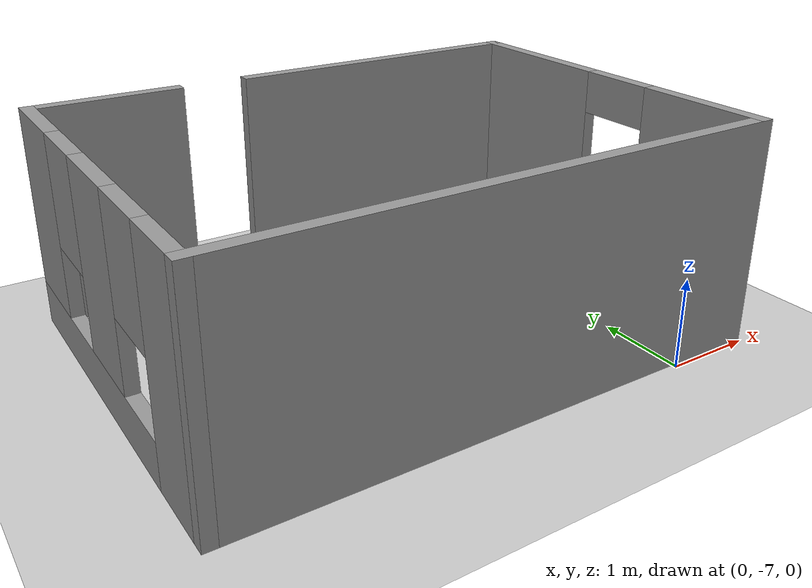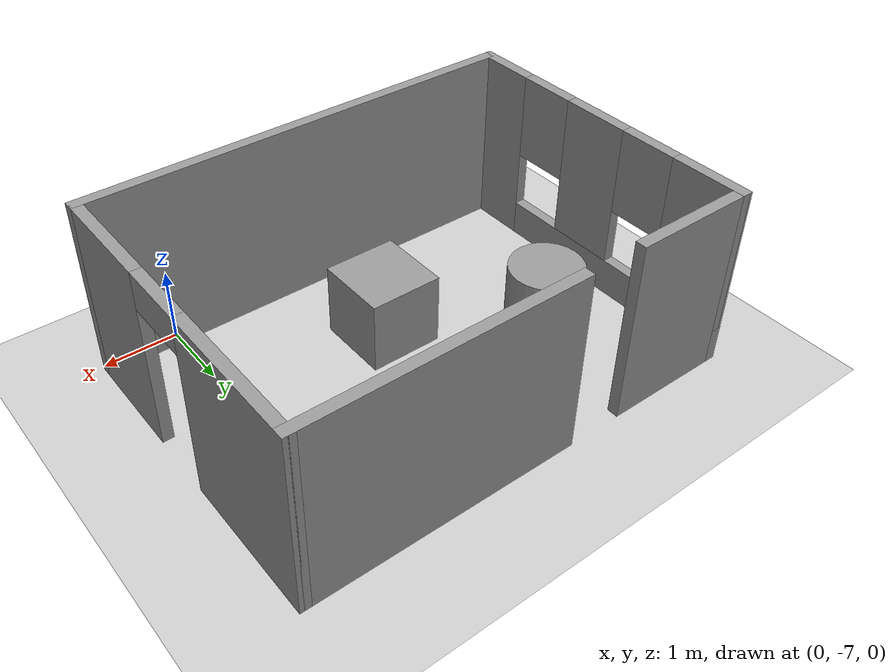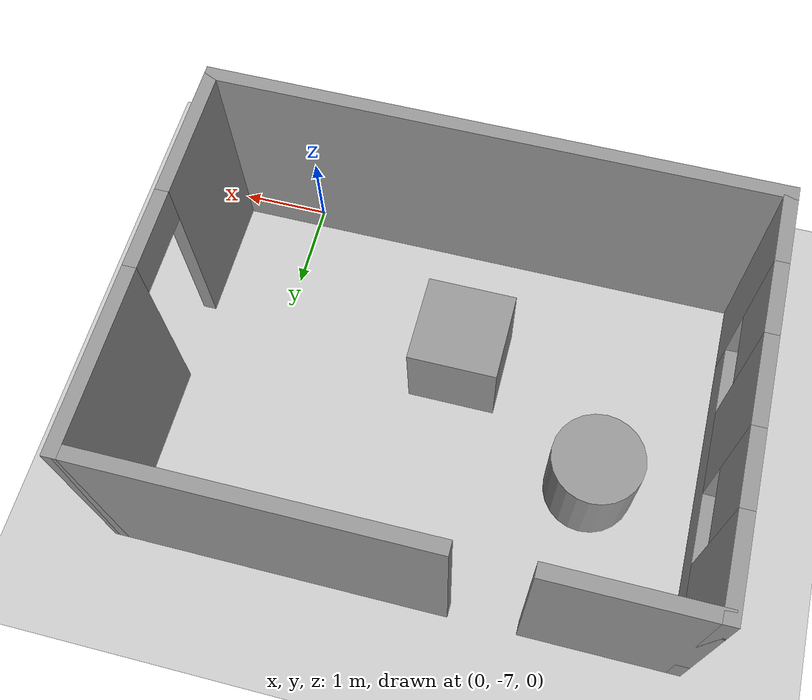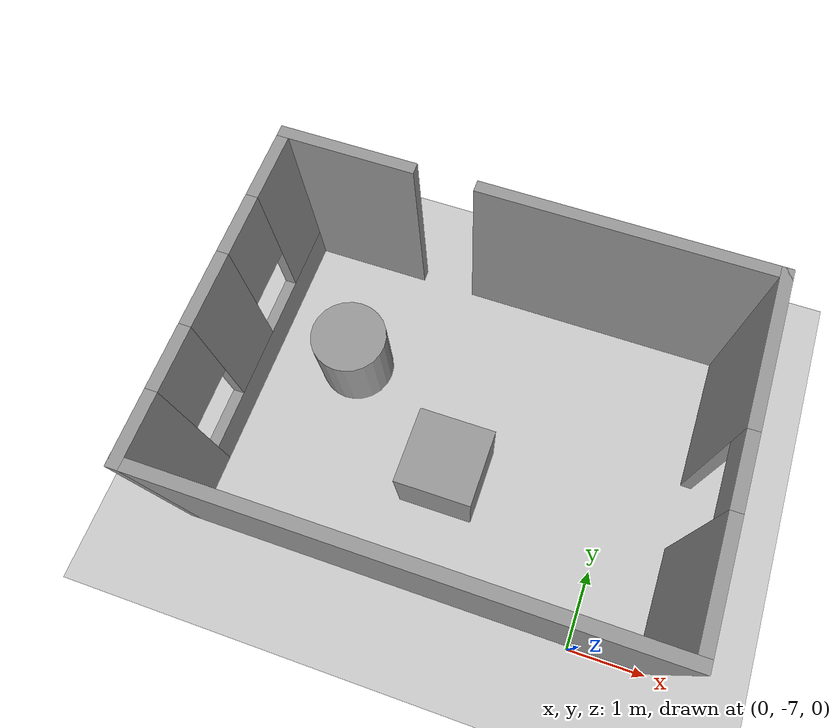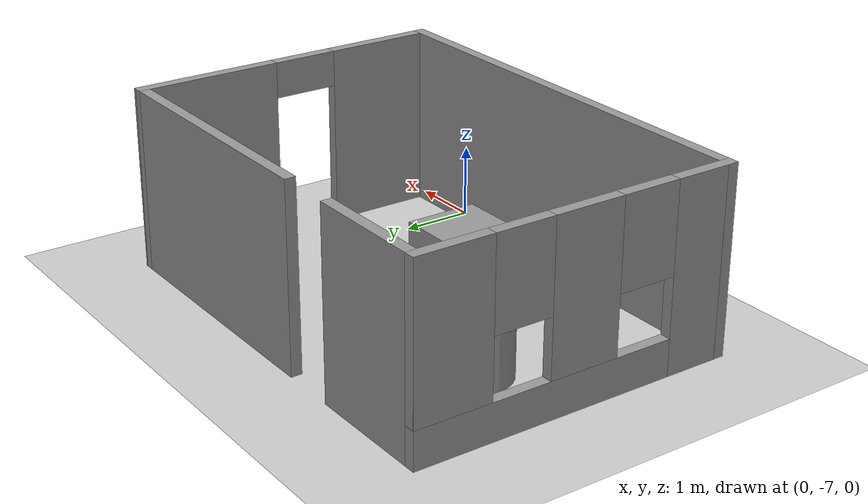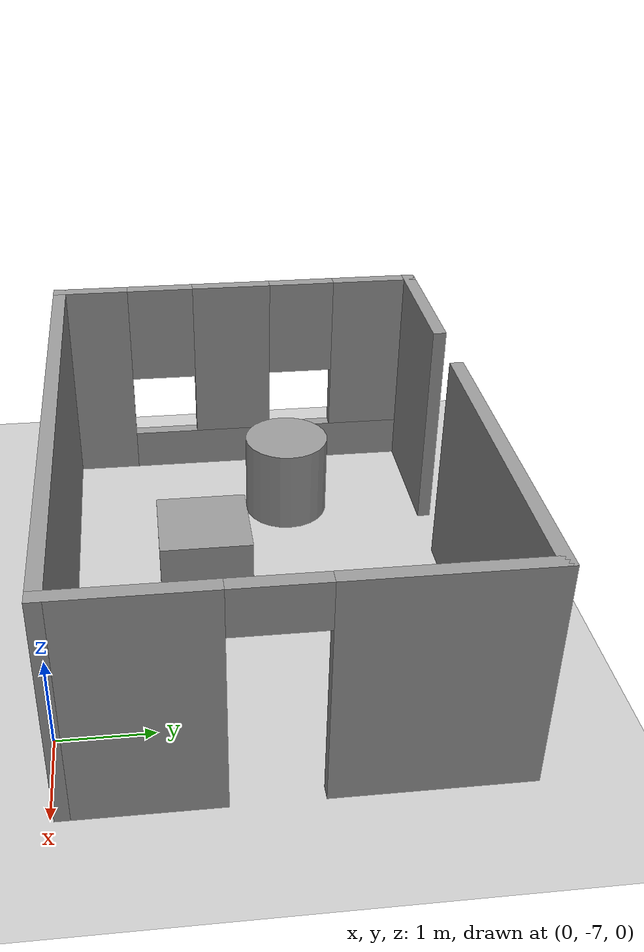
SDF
<sdf version="1.7">
 <world name="default">
  <light name="sun" type="directional">
   <pose>0 0 10 0 -0 0</pose>
   <diffuse>0.8 0.8 0.8 1</diffuse>
   <specular>0.2 0.2 0.2 1</specular>
   <attenuation>
    <range>1000</range>
    <constant>0.9</constant>
    <linear>0.01</linear>
    <quadratic>0.001</quadratic>
   </attenuation>
   <direction>-0.5 0.1 -0.9</direction>
   <spot><inner_angle>0</inner_angle><outer_angle>0</outer_angle><falloff>0</falloff></spot>
  </light>
  <model name="ground_plane">
   <static>1</static>
   <link name="link">
    <collision name="collision">
     <geometry><plane><normal>0 0 1</normal><size>100 100</size></plane></geometry>
     <surface>
      <contact><collide_bitmask>65535</collide_bitmask></contact>
      <friction><ode><mu>100</mu><mu2>50</mu2></ode></friction>
     </surface>
    </collision>
    <visual name="visual">
     <cast_shadows>0</cast_shadows>
     <geometry><plane><normal>0 0 1</normal><size>100 100</size></plane></geometry>
     <material>
      <script><uri>file://media/materials/scripts/gazebo.material</uri><name>Gazebo/Grey</name></script>
     </material>
    </visual>
   </link>
  </model>
  <gravity>0 0 -9.8</gravity>
  <magnetic_field>6e-06 2.3e-05 -4.2e-05</magnetic_field>
  <atmosphere type="adiabatic"/>
  <physics type="ode">
   <max_step_size>0.001</max_step_size>
   <real_time_factor>1</real_time_factor>
   <real_time_update_rate>1000</real_time_update_rate>
  </physics>
  <scene><ambient>0.4 0.4 0.4 1</ambient><background>0.7 0.7 0.7 1</background><shadows>1</shadows></scene>
  <spherical_coordinates>
   <surface_model>EARTH_WGS84</surface_model>
   <latitude_deg>0</latitude_deg>
   <longitude_deg>0</longitude_deg>
   <elevation>0</elevation>
   <heading_deg>0</heading_deg>
  </spherical_coordinates>
  <model name="room1">
   <pose>-2.1 -3.4825 0 0 -0 0</pose>
   <link name="Wall_0">
    <collision name="Wall_0_Collision">
     <geometry><box><size>3.75 0.15 2.5</size></box></geometry>
     <pose>0 0 1.25 0 -0 0</pose>
    </collision>
    <visual name="Wall_0_Visual">
     <pose>0 0 1.25 0 -0 0</pose>
     <geometry><box><size>3.75 0.15 2.5</size></box></geometry>
     <material>
      <script><uri>file://media/materials/scripts/gazebo.material</uri><name>Gazebo/Grey</name></script>
      <ambient>1 1 1 1</ambient>
     </material>
     <meta><layer>0</layer></meta>
    </visual>
    <pose>1.25 0.9425 0 0 -0 0</pose>
   </link>
   <link name="Wall_1">
    <pose>3.05 -1.2325 0 0 -0 -1.5708</pose>
    <visual name="Wall_1_Visual_0">
     <pose>-1.24335 0 1.25 0 -0 0</pose>
     <geometry><box><size>2.0133 0.15 2.5</size></box></geometry>
     <material>
      <script><uri>file://media/materials/scripts/gazebo.material</uri><name>Gazebo/Grey</name></script>
      <ambient>1 1 1 1</ambient>
     </material>
     <meta><layer>0</layer></meta>
    </visual>
    <collision name="Wall_1_Collision_0">
     <geometry><box><size>2.0133 0.15 2.5</size></box></geometry>
     <pose>-1.24335 0 1.25 0 -0 0</pose>
    </collision>
    <visual name="Wall_1_Visual_1">
     <pose>1.45665 0 1.25 0 -0 0</pose>
     <geometry><box><size>1.58669 0.15 2.5</size></box></geometry>
     <material>
      <script><uri>file://media/materials/scripts/gazebo.material</uri><name>Gazebo/Grey</name></script>
      <ambient>1 1 1 1</ambient>
     </material>
     <meta><layer>0</layer></meta>
    </visual>
    <collision name="Wall_1_Collision_1">
     <geometry><box><size>1.58669 0.15 2.5</size></box></geometry>
     <pose>1.45665 0 1.25 0 -0 0</pose>
    </collision>
    <visual name="Wall_1_Visual_2">
     <pose>0.213305 0 2.25 0 -0 0</pose>
     <geometry><box><size>0.9 0.15 0.5</size></box></geometry>
     <material>
      <script><uri>file://media/materials/scripts/gazebo.material</uri><name>Gazebo/Grey</name></script>
      <ambient>1 1 1 1</ambient>
     </material>
     <meta><layer>0</layer></meta>
    </visual>
    <collision name="Wall_1_Collision_2">
     <geometry><box><size>0.9 0.15 0.5</size></box></geometry>
     <pose>0.213305 0 2.25 0 -0 0</pose>
    </collision>
   </link>
   <link name="Wall_2">
    <collision name="Wall_2_Collision">
     <geometry><box><size>6.25 0.15 2.5</size></box></geometry>
     <pose>0 0 1.25 0 -0 0</pose>
    </collision>
    <visual name="Wall_2_Visual">
     <pose>0 0 1.25 0 -0 0</pose>
     <geometry><box><size>6.25 0.15 2.5</size></box></geometry>
     <material>
      <script><uri>file://media/materials/scripts/gazebo.material</uri><name>Gazebo/Grey</name></script>
      <ambient>1 1 1 1</ambient>
     </material>
     <meta><layer>0</layer></meta>
    </visual>
    <pose>0 -3.4075 0 0 -0 3.14159</pose>
   </link>
   <link name="Wall_3">
    <pose>-3.05 -1.2325 0 0 -0 1.5708</pose>
    <visual name="Wall_3_Visual_0">
     <pose>-1.80165 0 1.25 0 -0 0</pose>
     <geometry><box><size>0.896695 0.15 2.5</size></box></geometry>
     <material>
      <script><uri>file://media/materials/scripts/gazebo.material</uri><name>Gazebo/Grey</name></script>
      <ambient>1 1 1 1</ambient>
     </material>
     <meta><layer>0</layer></meta>
    </visual>
    <collision name="Wall_3_Collision_0">
     <geometry><box><size>0.896695 0.15 2.5</size></box></geometry>
     <pose>-1.80165 0 1.25 0 -0 0</pose>
    </collision>
    <visual name="Wall_3_Visual_1">
     <pose>0.448348 0 0.25 0 -0 0</pose>
     <geometry><box><size>3.60331 0.15 0.5</size></box></geometry>
     <material>
      <script><uri>file://media/materials/scripts/gazebo.material</uri><name>Gazebo/Grey</name></script>
      <ambient>1 1 1 1</ambient>
     </material>
     <meta><layer>0</layer></meta>
    </visual>
    <collision name="Wall_3_Collision_1">
     <geometry><box><size>3.60331 0.15 0.5</size></box></geometry>
     <pose>0.448348 0 0.25 0 -0 0</pose>
    </collision>
    <visual name="Wall_3_Visual_2">
     <pose>-0.073305 0 1.5 0 -0 0</pose>
     <geometry><box><size>0.96 0.15 2</size></box></geometry>
     <material>
      <script><uri>file://media/materials/scripts/gazebo.material</uri><name>Gazebo/Grey</name></script>
      <ambient>1 1 1 1</ambient>
     </material>
     <meta><layer>0</layer></meta>
    </visual>
    <collision name="Wall_3_Collision_2">
     <geometry><box><size>0.96 0.15 2</size></box></geometry>
     <pose>-0.073305 0 1.5 0 -0 0</pose>
    </collision>
    <visual name="Wall_3_Visual_3">
     <pose>1.72835 0 1.5 0 -0 0</pose>
     <geometry><box><size>1.0433 0.15 2</size></box></geometry>
     <material>
      <script><uri>file://media/materials/scripts/gazebo.material</uri><name>Gazebo/Grey</name></script>
      <ambient>1 1 1 1</ambient>
     </material>
     <meta><layer>0</layer></meta>
    </visual>
    <collision name="Wall_3_Collision_3">
     <geometry><box><size>1.0433 0.15 2</size></box></geometry>
     <pose>1.72835 0 1.5 0 -0 0</pose>
    </collision>
    <visual name="Wall_3_Visual_4">
     <pose>-0.953305 0 1.9 0 -0 0</pose>
     <geometry><box><size>0.8 0.15 1.2</size></box></geometry>
     <material>
      <script><uri>file://media/materials/scripts/gazebo.material</uri><name>Gazebo/Grey</name></script>
      <ambient>1 1 1 1</ambient>
     </material>
     <meta><layer>0</layer></meta>
    </visual>
    <collision name="Wall_3_Collision_4">
     <geometry><box><size>0.8 0.15 1.2</size></box></geometry>
     <pose>-0.953305 0 1.9 0 -0 0</pose>
    </collision>
    <visual name="Wall_3_Visual_5">
     <pose>0.806695 0 1.9 0 -0 0</pose>
     <geometry><box><size>0.8 0.15 1.2</size></box></geometry>
     <material>
      <script><uri>file://media/materials/scripts/gazebo.material</uri><name>Gazebo/Grey</name></script>
      <ambient>1 1 1 1</ambient>
     </material>
     <meta><layer>0</layer></meta>
    </visual>
    <collision name="Wall_3_Collision_5">
     <geometry><box><size>0.8 0.15 1.2</size></box></geometry>
     <pose>0.806695 0 1.9 0 -0 0</pose>
    </collision>
   </link>
   <link name="Wall_4">
    <collision name="Wall_4_Collision">
     <geometry><box><size>1.75 0.15 2.5</size></box></geometry>
     <pose>0 0 1.25 0 -0 0</pose>
    </collision>
    <visual name="Wall_4_Visual">
     <pose>0 0 1.25 0 -0 0</pose>
     <geometry><box><size>1.75 0.15 2.5</size></box></geometry>
     <material>
      <script><uri>file://media/materials/scripts/gazebo.material</uri><name>Gazebo/Grey</name></script>
      <ambient>1 1 1 1</ambient>
     </material>
     <meta><layer>0</layer></meta>
    </visual>
    <pose>-2.25 0.9425 0 0 -0 0</pose>
   </link>
   <static>1</static>
  </model>
  <model name="unit_box">
   <pose>-2.16418 -5.36977 0.499995 -1e-05 -0 0</pose>
   <link name="link">
    <inertial>
     <mass>1</mass>
     <inertia>
      <ixx>0.166667</ixx>
      <ixy>0</ixy>
      <ixz>0</ixz>
      <iyy>0.166667</iyy>
      <iyz>0</iyz>
      <izz>0.166667</izz>
     </inertia>
    </inertial>
    <collision name="collision"><geometry><box><size>1 1 1</size></box></geometry></collision>
    <visual name="visual">
     <geometry><box><size>1 1 1</size></box></geometry>
     <material>
      <script><name>Gazebo/Grey</name><uri>file://media/materials/scripts/gazebo.material</uri></script>
     </material>
    </visual>
   </link>
  </model>
  <model name="unit_cylinder">
   <pose>-3.89699 -4.23413 0.499997 3e-06 4e-06 -0</pose>
   <link name="link">
    <inertial>
     <mass>1</mass>
     <inertia><ixx>0.145833</ixx><ixy>0</ixy><ixz>0</ixz><iyy>0.145833</iyy><iyz>0</iyz><izz>0.125</izz></inertia>
    </inertial>
    <collision name="collision">
     <geometry><cylinder><radius>0.5</radius><length>1</length></cylinder></geometry>
    </collision>
    <visual name="visual">
     <geometry><cylinder><radius>0.5</radius><length>1</length></cylinder></geometry>
     <material>
      <script><name>Gazebo/Grey</name><uri>file://media/materials/scripts/gazebo.material</uri></script>
     </material>
    </visual>
   </link>
  </model>
 </world>
</sdf>
